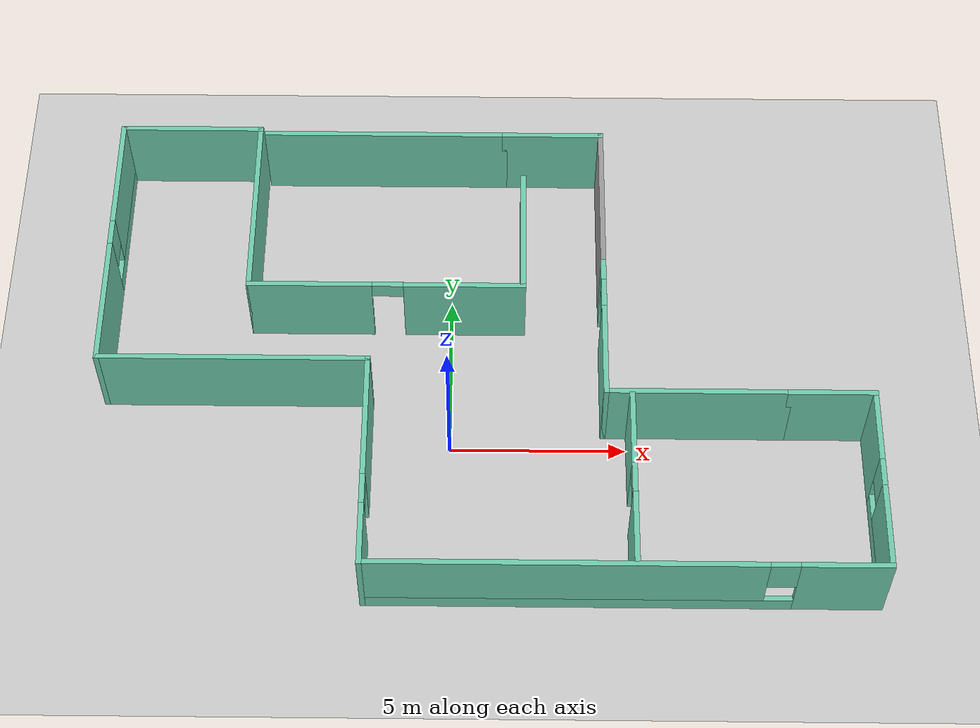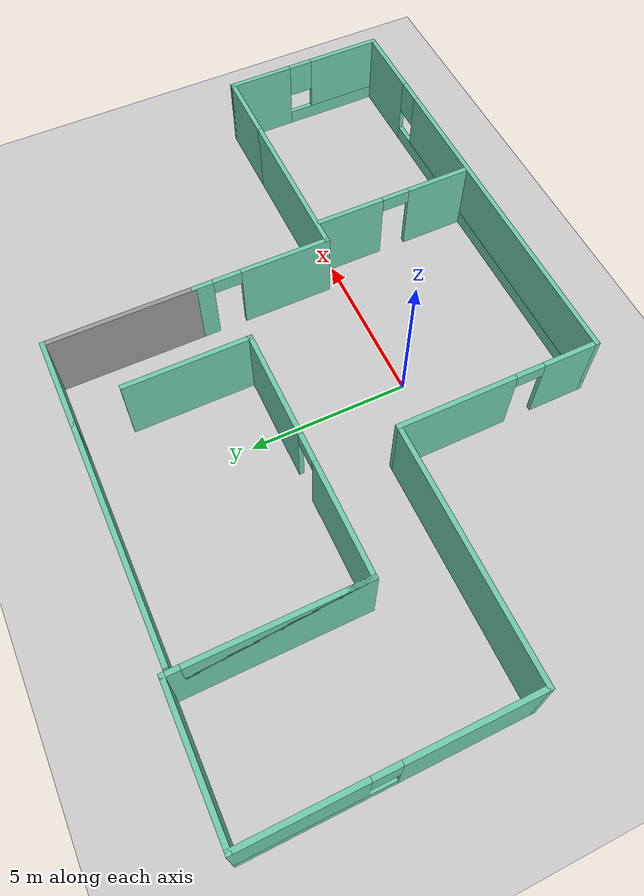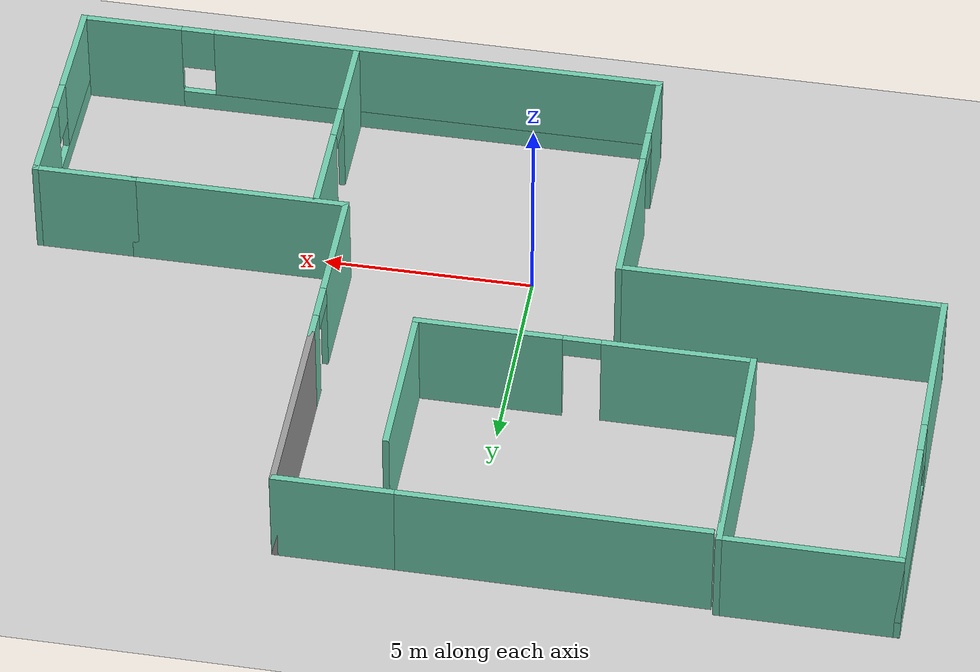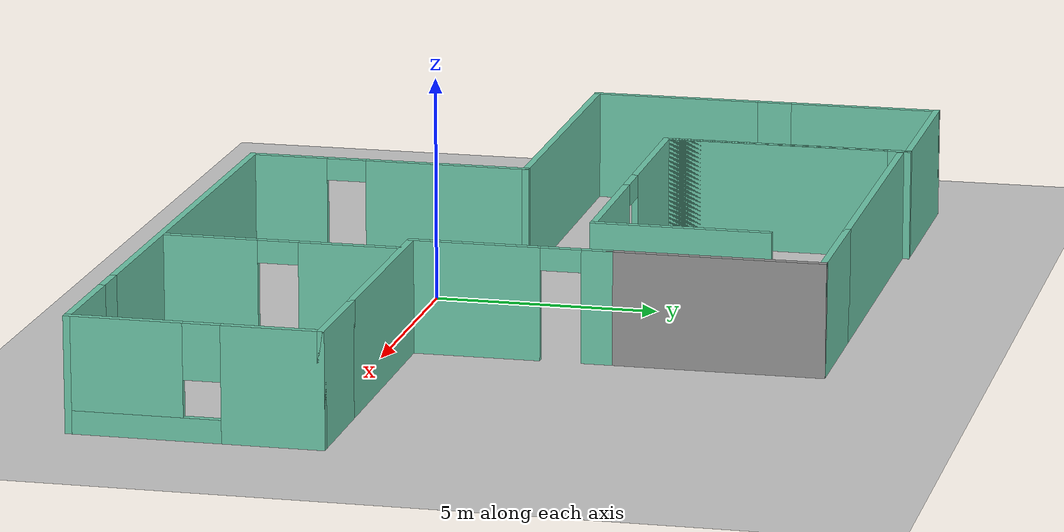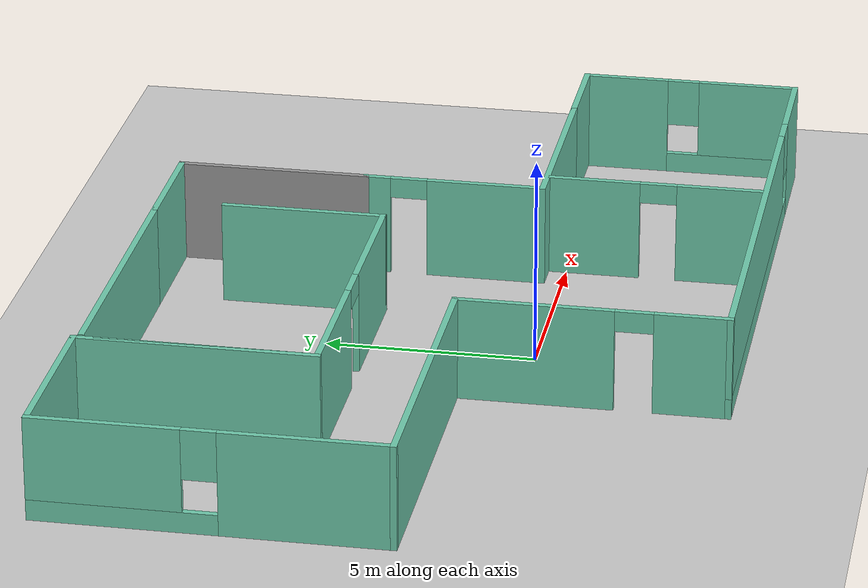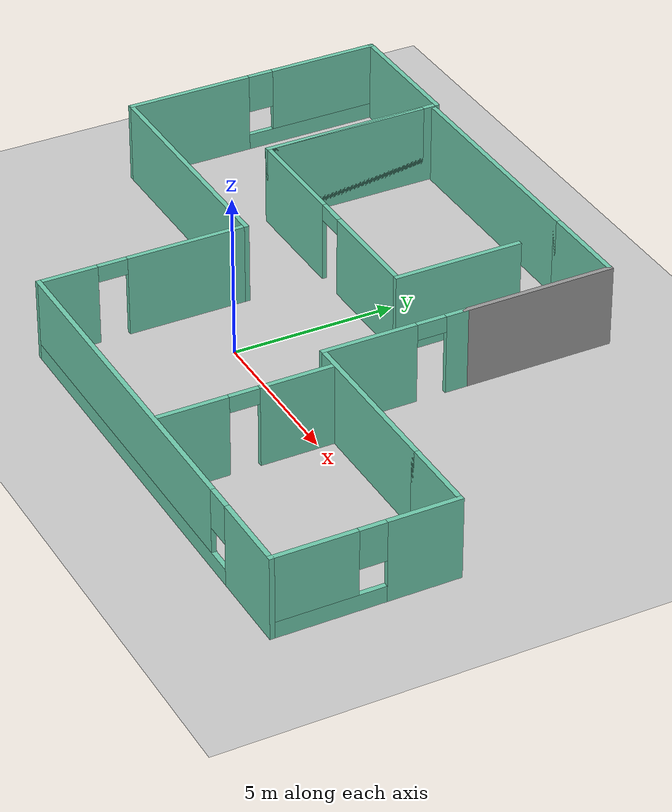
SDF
<sdf version="1.6">
 <world name="default">
  <plugin name="welcome" filename="libwelcome.so"/>
  <light name="sun" type="directional">
   <pose>0 0 10 0 -0 0</pose>
   <diffuse>0.8 0.8 0.8 1</diffuse>
   <specular>0.2 0.2 0.2 1</specular>
   <attenuation>
    <range>1000</range>
    <constant>0.9</constant>
    <linear>0.01</linear>
    <quadratic>0.001</quadratic>
   </attenuation>
   <direction>-0.5 0.1 -0.9</direction>
  </light>
  <gravity>0 0 -9.8</gravity>
  <magnetic_field>6e-06 2.3e-05 -4.2e-05</magnetic_field>
  <atmosphere type="adiabatic"/>
  <physics name="default_physics" default="0" type="ode">
   <max_step_size>0.001</max_step_size>
   <real_time_factor>1</real_time_factor>
   <real_time_update_rate>1000</real_time_update_rate>
  </physics>
  <scene><ambient>0.4 0.4 0.4 1</ambient><background>0.7 0.7 0.7 1</background><shadows>1</shadows></scene>
  <spherical_coordinates>
   <surface_model>EARTH_WGS84</surface_model>
   <latitude_deg>0</latitude_deg>
   <longitude_deg>0</longitude_deg>
   <elevation>0</elevation>
   <heading_deg>0</heading_deg>
  </spherical_coordinates>
  <model name="ground_plane">
   <static>1</static>
   <link name="link">
    <collision name="collision">
     <geometry><plane><normal>0 0 1</normal><size>100 100</size></plane></geometry>
     <surface><friction><ode><mu>100</mu><mu2>50</mu2></ode></friction></surface>
    </collision>
    <visual name="visual">
     <cast_shadows>0</cast_shadows>
     <geometry><plane><normal>0 0 1</normal><size>100 100</size></plane></geometry>
     <material>
      <script><uri>file://media/materials/scripts/gazebo.material</uri><name>Gazebo/Grey</name></script>
     </material>
    </visual>
   </link>
   <pose>-6.45493 -0.450244 0 0 -0 0</pose>
  </model>
  <model name="office">
   <pose>0.96652 2.38913 0 0 -0 0</pose>
   <link name="Wall_17">
    <collision name="Wall_17_Collision">
     <geometry><box><size>7.25 0.15 2.5</size></box></geometry>
     <pose>0 0 1.25 0 -0 0</pose>
    </collision>
    <visual name="Wall_17_Visual">
     <pose>0 0 1.25 0 -0 0</pose>
     <geometry><box><size>7.25 0.15 2.5</size></box></geometry>
     <material>
      <script><uri>file://media/materials/scripts/gazebo.material</uri><name>Gazebo/Grey</name></script>
      <ambient>0.435294 0.796078 0.67451 1</ambient>
     </material>
     <meta><layer>0</layer></meta>
    </visual>
    <pose>-3 7.075 0 0 -0 0</pose>
   </link>
   <link name="Wall_18">
    <collision name="Wall_18_Collision">
     <geometry><box><size>3 0.15 2.5</size></box></geometry>
     <pose>0 0 1.25 0 -0 0</pose>
    </collision>
    <visual name="Wall_18_Visual">
     <pose>0 0 1.25 0 -0 0</pose>
     <geometry><box><size>3 0.15 2.5</size></box></geometry>
     <material>
      <script><uri>file://media/materials/scripts/gazebo.material</uri><name>Gazebo/Grey</name></script>
      <ambient>0.435294 0.796078 0.67451 1</ambient>
     </material>
     <meta><layer>0</layer></meta>
    </visual>
    <pose>1.975 7.075 0 0 -0 0</pose>
   </link>
   <link name="Wall_19">
    <collision name="Wall_19_Collision">
     <geometry><box><size>4.75 0.15 2.5</size></box></geometry>
     <pose>0 0 1.25 0 -0 0</pose>
    </collision>
    <visual name="Wall_19_Visual">
     <pose>0 0 1.25 0 -0 0</pose>
     <geometry><box><size>4.75 0.15 2.5</size></box></geometry>
     <material>
      <script><uri>file://media/materials/scripts/gazebo.material</uri><name>Gazebo/Grey</name></script>
      <ambient>1 1 1 1</ambient>
     </material>
     <meta><layer>0</layer></meta>
    </visual>
    <pose>3.4 4.775 0 0 0 -1.5708</pose>
   </link>
   <link name="Wall_20">
    <pose>3.4 0.3 0 0 0 -1.5708</pose>
    <visual name="Wall_20_Visual_0">
     <pose>-1.9085 0 1.25 0 -0 0</pose>
     <geometry><box><size>0.683 0.15 2.5</size></box></geometry>
     <material>
      <script><uri>file://media/materials/scripts/gazebo.material</uri><name>Gazebo/Grey</name></script>
      <ambient>0.435294 0.796078 0.67451 1</ambient>
     </material>
     <meta><layer>0</layer></meta>
    </visual>
    <collision name="Wall_20_Collision_0">
     <geometry><box><size>0.683 0.15 2.5</size></box></geometry>
     <pose>-1.9085 0 1.25 0 -0 0</pose>
    </collision>
    <visual name="Wall_20_Visual_1">
     <pose>0.7915 0 1.25 0 -0 0</pose>
     <geometry><box><size>2.917 0.15 2.5</size></box></geometry>
     <material>
      <script><uri>file://media/materials/scripts/gazebo.material</uri><name>Gazebo/Grey</name></script>
      <ambient>0.435294 0.796078 0.67451 1</ambient>
     </material>
     <meta><layer>0</layer></meta>
    </visual>
    <collision name="Wall_20_Collision_1">
     <geometry><box><size>2.917 0.15 2.5</size></box></geometry>
     <pose>0.7915 0 1.25 0 -0 0</pose>
    </collision>
    <visual name="Wall_20_Visual_2">
     <pose>-1.117 0 2.25 0 -0 0</pose>
     <geometry><box><size>0.9 0.15 0.5</size></box></geometry>
     <material>
      <script><uri>file://media/materials/scripts/gazebo.material</uri><name>Gazebo/Grey</name></script>
      <ambient>0.435294 0.796078 0.67451 1</ambient>
     </material>
     <meta><layer>0</layer></meta>
    </visual>
    <collision name="Wall_20_Collision_2">
     <geometry><box><size>0.9 0.15 0.5</size></box></geometry>
     <pose>-1.117 0 2.25 0 -0 0</pose>
    </collision>
   </link>
   <link name="Wall_21">
    <collision name="Wall_21_Collision">
     <geometry><box><size>5.25 0.15 2.5</size></box></geometry>
     <pose>0 0 1.25 0 -0 0</pose>
    </collision>
    <visual name="Wall_21_Visual">
     <pose>0 0 1.25 0 -0 0</pose>
     <geometry><box><size>5.25 0.15 2.5</size></box></geometry>
     <material>
      <script><uri>file://media/materials/scripts/gazebo.material</uri><name>Gazebo/Grey</name></script>
      <ambient>0.435294 0.796078 0.67451 1</ambient>
     </material>
     <meta><layer>0</layer></meta>
    </visual>
    <pose>5.95 -1.875 0 0 -0 0</pose>
   </link>
   <link name="Wall_22">
    <collision name="Wall_22_Collision">
     <geometry><box><size>2.5 0.15 2.5</size></box></geometry>
     <pose>0 0 1.25 0 -0 0</pose>
    </collision>
    <visual name="Wall_22_Visual">
     <pose>0 0 1.25 0 -0 0</pose>
     <geometry><box><size>2.5 0.15 2.5</size></box></geometry>
     <material>
      <script><uri>file://media/materials/scripts/gazebo.material</uri><name>Gazebo/Grey</name></script>
      <ambient>0.435294 0.796078 0.67451 1</ambient>
     </material>
     <meta><layer>0</layer></meta>
    </visual>
    <pose>9.675 -1.875 0 0 -0 0</pose>
   </link>
   <link name="Wall_23">
    <pose>10.85 -4.55 0 0 0 -1.5708</pose>
    <visual name="Wall_23_Visual_0">
     <pose>-1.6605 0 1.25 0 -0 0</pose>
     <geometry><box><size>2.179 0.15 2.5</size></box></geometry>
     <material>
      <script><uri>file://media/materials/scripts/gazebo.material</uri><name>Gazebo/Grey</name></script>
      <ambient>0.435294 0.796078 0.67451 1</ambient>
     </material>
     <meta><layer>0</layer></meta>
    </visual>
    <collision name="Wall_23_Collision_0">
     <geometry><box><size>2.179 0.15 2.5</size></box></geometry>
     <pose>-1.6605 0 1.25 0 -0 0</pose>
    </collision>
    <visual name="Wall_23_Visual_1">
     <pose>1.0895 0 0.25 0 -0 0</pose>
     <geometry><box><size>3.321 0.15 0.5</size></box></geometry>
     <material>
      <script><uri>file://media/materials/scripts/gazebo.material</uri><name>Gazebo/Grey</name></script>
      <ambient>0.435294 0.796078 0.67451 1</ambient>
     </material>
     <meta><layer>0</layer></meta>
    </visual>
    <collision name="Wall_23_Collision_1">
     <geometry><box><size>3.321 0.15 0.5</size></box></geometry>
     <pose>1.0895 0 0.25 0 -0 0</pose>
    </collision>
    <visual name="Wall_23_Visual_2">
     <pose>1.4895 0 1.5 0 -0 0</pose>
     <geometry><box><size>2.521 0.15 2</size></box></geometry>
     <material>
      <script><uri>file://media/materials/scripts/gazebo.material</uri><name>Gazebo/Grey</name></script>
      <ambient>0.435294 0.796078 0.67451 1</ambient>
     </material>
     <meta><layer>0</layer></meta>
    </visual>
    <collision name="Wall_23_Collision_2">
     <geometry><box><size>2.521 0.15 2</size></box></geometry>
     <pose>1.4895 0 1.5 0 -0 0</pose>
    </collision>
    <visual name="Wall_23_Visual_3">
     <pose>-0.171 0 1.9 0 -0 0</pose>
     <geometry><box><size>0.8 0.15 1.2</size></box></geometry>
     <material>
      <script><uri>file://media/materials/scripts/gazebo.material</uri><name>Gazebo/Grey</name></script>
      <ambient>0.435294 0.796078 0.67451 1</ambient>
     </material>
     <meta><layer>0</layer></meta>
    </visual>
    <collision name="Wall_23_Collision_3">
     <geometry><box><size>0.8 0.15 1.2</size></box></geometry>
     <pose>-0.171 0 1.9 0 -0 0</pose>
    </collision>
   </link>
   <link name="Wall_24">
    <pose>3.8 -7.225 0 0 -0 3.14159</pose>
    <visual name="Wall_24_Visual_0">
     <pose>-5.8785 0 1.25 0 -0 0</pose>
     <geometry><box><size>2.493 0.15 2.5</size></box></geometry>
     <material>
      <script><uri>file://media/materials/scripts/gazebo.material</uri><name>Gazebo/Grey</name></script>
      <ambient>0.435294 0.796078 0.67451 1</ambient>
     </material>
     <meta><layer>0</layer></meta>
    </visual>
    <collision name="Wall_24_Collision_0">
     <geometry><box><size>2.493 0.15 2.5</size></box></geometry>
     <pose>-5.8785 0 1.25 0 -0 0</pose>
    </collision>
    <visual name="Wall_24_Visual_1">
     <pose>1.2465 0 0.25 0 -0 0</pose>
     <geometry><box><size>11.757 0.15 0.5</size></box></geometry>
     <material>
      <script><uri>file://media/materials/scripts/gazebo.material</uri><name>Gazebo/Grey</name></script>
      <ambient>0.435294 0.796078 0.67451 1</ambient>
     </material>
     <meta><layer>0</layer></meta>
    </visual>
    <collision name="Wall_24_Collision_1">
     <geometry><box><size>11.757 0.15 0.5</size></box></geometry>
     <pose>1.2465 0 0.25 0 -0 0</pose>
    </collision>
    <visual name="Wall_24_Visual_2">
     <pose>1.6465 0 1.5 0 -0 0</pose>
     <geometry><box><size>10.957 0.15 2</size></box></geometry>
     <material>
      <script><uri>file://media/materials/scripts/gazebo.material</uri><name>Gazebo/Grey</name></script>
      <ambient>0.435294 0.796078 0.67451 1</ambient>
     </material>
     <meta><layer>0</layer></meta>
    </visual>
    <collision name="Wall_24_Collision_2">
     <geometry><box><size>10.957 0.15 2</size></box></geometry>
     <pose>1.6465 0 1.5 0 -0 0</pose>
    </collision>
    <visual name="Wall_24_Visual_3">
     <pose>-4.232 0 1.9 0 -0 0</pose>
     <geometry><box><size>0.8 0.15 1.2</size></box></geometry>
     <material>
      <script><uri>file://media/materials/scripts/gazebo.material</uri><name>Gazebo/Grey</name></script>
      <ambient>0.435294 0.796078 0.67451 1</ambient>
     </material>
     <meta><layer>0</layer></meta>
    </visual>
    <collision name="Wall_24_Collision_3">
     <geometry><box><size>0.8 0.15 1.2</size></box></geometry>
     <pose>-4.232 0 1.9 0 -0 0</pose>
    </collision>
   </link>
   <link name="Wall_25">
    <pose>-3.25 -4.05 0 0 -0 1.5708</pose>
    <visual name="Wall_25_Visual_0">
     <pose>-2.3365 0 1.25 0 -0 0</pose>
     <geometry><box><size>1.827 0.15 2.5</size></box></geometry>
     <material>
      <script><uri>file://media/materials/scripts/gazebo.material</uri><name>Gazebo/Grey</name></script>
      <ambient>0.435294 0.796078 0.67451 1</ambient>
     </material>
     <meta><layer>0</layer></meta>
    </visual>
    <collision name="Wall_25_Collision_0">
     <geometry><box><size>1.827 0.15 2.5</size></box></geometry>
     <pose>-2.3365 0 1.25 0 -0 0</pose>
    </collision>
    <visual name="Wall_25_Visual_1">
     <pose>1.3635 0 1.25 0 -0 0</pose>
     <geometry><box><size>3.773 0.15 2.5</size></box></geometry>
     <material>
      <script><uri>file://media/materials/scripts/gazebo.material</uri><name>Gazebo/Grey</name></script>
      <ambient>0.435294 0.796078 0.67451 1</ambient>
     </material>
     <meta><layer>0</layer></meta>
    </visual>
    <collision name="Wall_25_Collision_1">
     <geometry><box><size>3.773 0.15 2.5</size></box></geometry>
     <pose>1.3635 0 1.25 0 -0 0</pose>
    </collision>
    <visual name="Wall_25_Visual_2">
     <pose>-0.973001 0 2.25 0 -0 0</pose>
     <geometry><box><size>0.9 0.15 0.5</size></box></geometry>
     <material>
      <script><uri>file://media/materials/scripts/gazebo.material</uri><name>Gazebo/Grey</name></script>
      <ambient>0.435294 0.796078 0.67451 1</ambient>
     </material>
     <meta><layer>0</layer></meta>
    </visual>
    <collision name="Wall_25_Collision_2">
     <geometry><box><size>0.9 0.15 0.5</size></box></geometry>
     <pose>-0.973001 0 2.25 0 -0 0</pose>
    </collision>
   </link>
   <link name="Wall_26">
    <collision name="Wall_26_Collision">
     <geometry><box><size>7.75 0.15 2.5</size></box></geometry>
     <pose>0 0 1.25 0 -0 0</pose>
    </collision>
    <visual name="Wall_26_Visual">
     <pose>0 0 1.25 0 -0 0</pose>
     <geometry><box><size>7.75 0.15 2.5</size></box></geometry>
     <material>
      <script><uri>file://media/materials/scripts/gazebo.material</uri><name>Gazebo/Grey</name></script>
      <ambient>0.435294 0.796078 0.67451 1</ambient>
     </material>
     <meta><layer>0</layer></meta>
    </visual>
    <pose>-7.05 -0.875 0 0 -0 3.14159</pose>
   </link>
   <link name="Wall_27">
    <pose>-10.85 3.175 0 0 -0 1.5708</pose>
    <visual name="Wall_27_Visual_0">
     <pose>-2.1525 0 1.25 0 -0 0</pose>
     <geometry><box><size>3.945 0.15 2.5</size></box></geometry>
     <material>
      <script><uri>file://media/materials/scripts/gazebo.material</uri><name>Gazebo/Grey</name></script>
      <ambient>0.435294 0.796078 0.67451 1</ambient>
     </material>
     <meta><layer>0</layer></meta>
    </visual>
    <collision name="Wall_27_Collision_0">
     <geometry><box><size>3.945 0.15 2.5</size></box></geometry>
     <pose>-2.1525 0 1.25 0 -0 0</pose>
    </collision>
    <visual name="Wall_27_Visual_1">
     <pose>1.9725 0 0.25 0 -0 0</pose>
     <geometry><box><size>4.305 0.15 0.5</size></box></geometry>
     <material>
      <script><uri>file://media/materials/scripts/gazebo.material</uri><name>Gazebo/Grey</name></script>
      <ambient>0.435294 0.796078 0.67451 1</ambient>
     </material>
     <meta><layer>0</layer></meta>
    </visual>
    <collision name="Wall_27_Collision_1">
     <geometry><box><size>4.305 0.15 0.5</size></box></geometry>
     <pose>1.9725 0 0.25 0 -0 0</pose>
    </collision>
    <visual name="Wall_27_Visual_2">
     <pose>2.3725 0 1.5 0 -0 0</pose>
     <geometry><box><size>3.505 0.15 2</size></box></geometry>
     <material>
      <script><uri>file://media/materials/scripts/gazebo.material</uri><name>Gazebo/Grey</name></script>
      <ambient>0.435294 0.796078 0.67451 1</ambient>
     </material>
     <meta><layer>0</layer></meta>
    </visual>
    <collision name="Wall_27_Collision_2">
     <geometry><box><size>3.505 0.15 2</size></box></geometry>
     <pose>2.3725 0 1.5 0 -0 0</pose>
    </collision>
    <visual name="Wall_27_Visual_3">
     <pose>0.22 0 1.9 0 -0 0</pose>
     <geometry><box><size>0.8 0.15 1.2</size></box></geometry>
     <material>
      <script><uri>file://media/materials/scripts/gazebo.material</uri><name>Gazebo/Grey</name></script>
      <ambient>0.435294 0.796078 0.67451 1</ambient>
     </material>
     <meta><layer>0</layer></meta>
    </visual>
    <collision name="Wall_27_Collision_3">
     <geometry><box><size>0.8 0.15 1.2</size></box></geometry>
     <pose>0.22 0 1.9 0 -0 0</pose>
    </collision>
   </link>
   <link name="Wall_28">
    <collision name="Wall_28_Collision">
     <geometry><box><size>4.25 0.15 2.5</size></box></geometry>
     <pose>0 0 1.25 0 -0 0</pose>
    </collision>
    <visual name="Wall_28_Visual">
     <pose>0 0 1.25 0 -0 0</pose>
     <geometry><box><size>4.25 0.15 2.5</size></box></geometry>
     <material>
      <script><uri>file://media/materials/scripts/gazebo.material</uri><name>Gazebo/Grey</name></script>
      <ambient>0.435294 0.796078 0.67451 1</ambient>
     </material>
     <meta><layer>0</layer></meta>
    </visual>
    <pose>-8.8 7.225 0 0 -0 0</pose>
   </link>
   <link name="Wall_29">
    <pose>-6.75 4.425 0 0 0 -1.5708</pose>
    <visual name="Wall_29_Visual_0">
     <pose>0 0 1.25 0 -0 0</pose>
     <geometry><box><size>5.75 0.15 2.5</size></box></geometry>
     <material>
      <script><uri>file://media/materials/scripts/gazebo.material</uri><name>Gazebo/Grey</name></script>
      <ambient>0.435294 0.796078 0.67451 1</ambient>
     </material>
     <meta><layer>0</layer></meta>
    </visual>
    <collision name="Wall_29_Collision_0">
     <geometry><box><size>5.75 0.15 2.5</size></box></geometry>
     <pose>0 0 1.25 0 -0 0</pose>
    </collision>
    <visual name="Wall_29_Visual_1">
     <pose>0.2685 0 1.25 0 -0 0</pose>
     <geometry><box><size>5.213 0.15 2.5</size></box></geometry>
     <material>
      <script><uri>file://media/materials/scripts/gazebo.material</uri><name>Gazebo/Grey</name></script>
      <ambient>0.435294 0.796078 0.67451 1</ambient>
     </material>
     <meta><layer>0</layer></meta>
    </visual>
    <collision name="Wall_29_Collision_1">
     <geometry><box><size>5.213 0.15 2.5</size></box></geometry>
     <pose>0.2685 0 1.25 0 -0 0</pose>
    </collision>
   </link>
   <link name="Wall_30">
    <pose>-2.825 1.625 0 0 -0 0</pose>
    <visual name="Wall_30_Visual_0">
     <pose>-2.2015 0 1.25 0 -0 0</pose>
     <geometry><box><size>3.597 0.15 2.5</size></box></geometry>
     <material>
      <script><uri>file://media/materials/scripts/gazebo.material</uri><name>Gazebo/Grey</name></script>
      <ambient>0.435294 0.796078 0.67451 1</ambient>
     </material>
     <meta><layer>0</layer></meta>
    </visual>
    <collision name="Wall_30_Collision_0">
     <geometry><box><size>3.597 0.15 2.5</size></box></geometry>
     <pose>-2.2015 0 1.25 0 -0 0</pose>
    </collision>
    <visual name="Wall_30_Visual_1">
     <pose>2.2485 0 1.25 0 -0 0</pose>
     <geometry><box><size>3.503 0.15 2.5</size></box></geometry>
     <material>
      <script><uri>file://media/materials/scripts/gazebo.material</uri><name>Gazebo/Grey</name></script>
      <ambient>0.435294 0.796078 0.67451 1</ambient>
     </material>
     <meta><layer>0</layer></meta>
    </visual>
    <collision name="Wall_30_Collision_1">
     <geometry><box><size>3.503 0.15 2.5</size></box></geometry>
     <pose>2.2485 0 1.25 0 -0 0</pose>
    </collision>
    <visual name="Wall_30_Visual_2">
     <pose>0.046999 0 2.25 0 -0 0</pose>
     <geometry><box><size>0.9 0.15 0.5</size></box></geometry>
     <material>
      <script><uri>file://media/materials/scripts/gazebo.material</uri><name>Gazebo/Grey</name></script>
      <ambient>0.435294 0.796078 0.67451 1</ambient>
     </material>
     <meta><layer>0</layer></meta>
    </visual>
    <collision name="Wall_30_Collision_2">
     <geometry><box><size>0.9 0.15 0.5</size></box></geometry>
     <pose>0.046999 0 2.25 0 -0 0</pose>
    </collision>
   </link>
   <link name="Wall_31">
    <collision name="Wall_31_Collision">
     <geometry><box><size>4 0.15 2.5</size></box></geometry>
     <pose>0 0 1.25 0 -0 0</pose>
    </collision>
    <visual name="Wall_31_Visual">
     <pose>0 0 1.25 0 -0 0</pose>
     <geometry><box><size>4 0.15 2.5</size></box></geometry>
     <material>
      <script><uri>file://media/materials/scripts/gazebo.material</uri><name>Gazebo/Grey</name></script>
      <ambient>0.435294 0.796078 0.67451 1</ambient>
     </material>
     <meta><layer>0</layer></meta>
    </visual>
    <pose>1.1 3.55 0 0 -0 1.5708</pose>
   </link>
   <link name="Wall_33">
    <pose>4.122 -4.537 0 0 0 -1.5708</pose>
    <visual name="Wall_33_Visual_0">
     <pose>-1.5015 0 1.25 0 -0 0</pose>
     <geometry><box><size>2.247 0.15 2.5</size></box></geometry>
     <material>
      <script><uri>file://media/materials/scripts/gazebo.material</uri><name>Gazebo/Grey</name></script>
      <ambient>0.435294 0.796078 0.67451 1</ambient>
     </material>
     <meta><layer>0</layer></meta>
    </visual>
    <collision name="Wall_33_Collision_0">
     <geometry><box><size>2.247 0.15 2.5</size></box></geometry>
     <pose>-1.5015 0 1.25 0 -0 0</pose>
    </collision>
    <visual name="Wall_33_Visual_1">
     <pose>1.5735 0 1.25 0 -0 0</pose>
     <geometry><box><size>2.103 0.15 2.5</size></box></geometry>
     <material>
      <script><uri>file://media/materials/scripts/gazebo.material</uri><name>Gazebo/Grey</name></script>
      <ambient>0.435294 0.796078 0.67451 1</ambient>
     </material>
     <meta><layer>0</layer></meta>
    </visual>
    <collision name="Wall_33_Collision_1">
     <geometry><box><size>2.103 0.15 2.5</size></box></geometry>
     <pose>1.5735 0 1.25 0 -0 0</pose>
    </collision>
    <visual name="Wall_33_Visual_2">
     <pose>0.072 0 2.25 0 -0 0</pose>
     <geometry><box><size>0.9 0.15 0.5</size></box></geometry>
     <material>
      <script><uri>file://media/materials/scripts/gazebo.material</uri><name>Gazebo/Grey</name></script>
      <ambient>0.435294 0.796078 0.67451 1</ambient>
     </material>
     <meta><layer>0</layer></meta>
    </visual>
    <collision name="Wall_33_Collision_2">
     <geometry><box><size>0.9 0.15 0.5</size></box></geometry>
     <pose>0.072 0 2.25 0 -0 0</pose>
    </collision>
   </link>
   <static>1</static>
  </model>
 </world>
</sdf>
